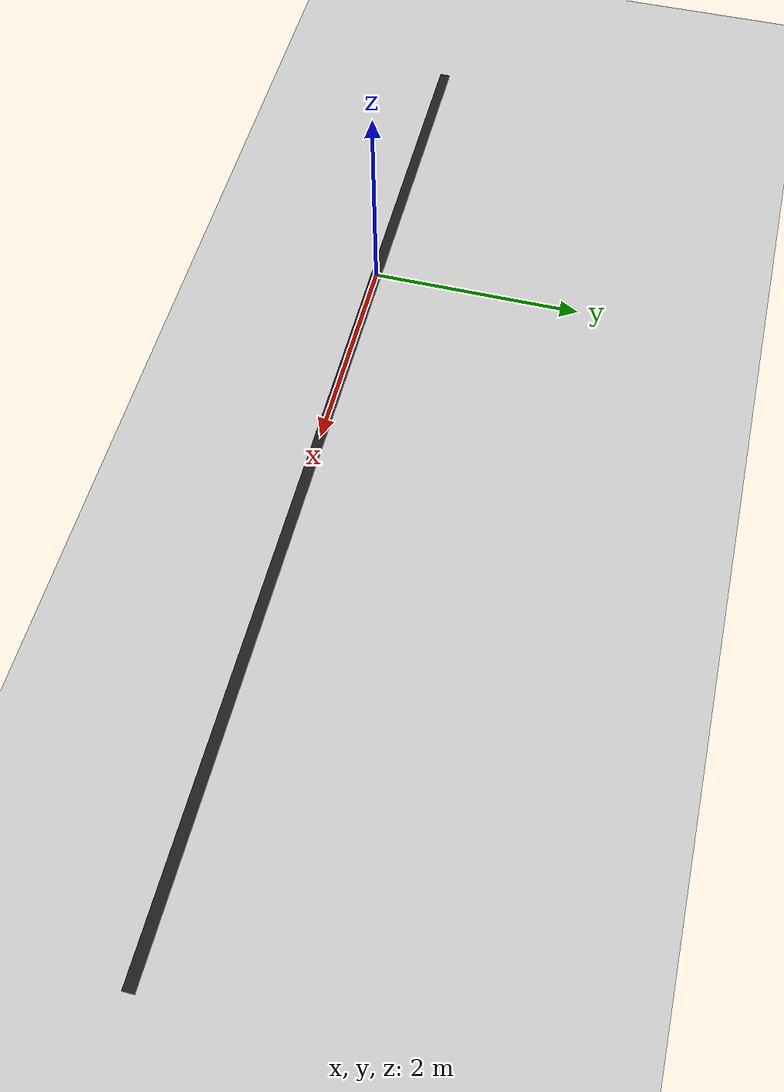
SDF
<?xml version="1.0"?>
<sdf version="1.6">
  <world name="default">
    <include>
      <uri>model://ground_plane</uri>
    </include>
    <include>
      <uri>model://sun</uri>
    </include>

    <model name="black_line">
      <pose>2 0 0.005 0 0 0</pose>
      <static>true</static>
      <link name="link">
        <visual name="visual">
          <geometry>
            <box><size>10 0.1 0.01</size></box>
          </geometry>
          <material>
            <script>
              <uri>file://media/materials/scripts/gazebo.material</uri>
              <name>Gazebo/Black</name>
            </script>
          </material>
        </visual>
        <collision name="collision">
          <geometry>
            <box><size>10 0.1 0.01</size></box>
          </geometry>
        </collision>
      </link>
    </model>
  </world>
</sdf>
